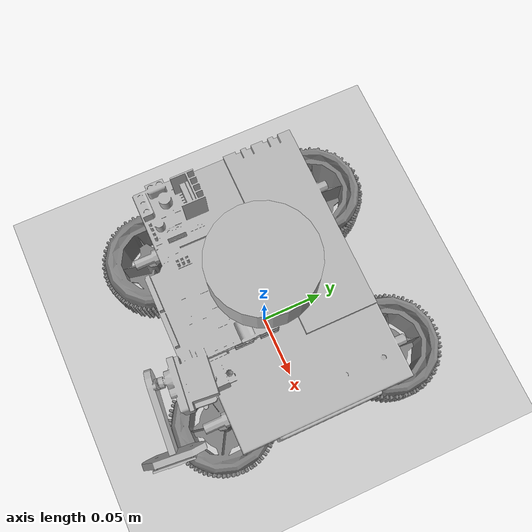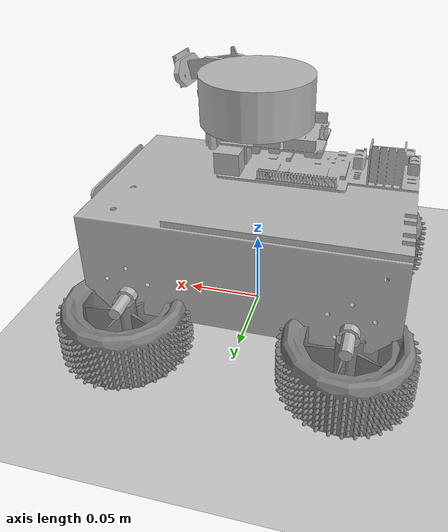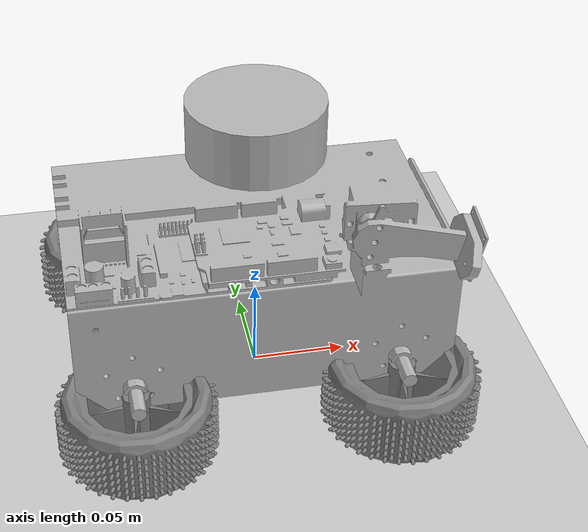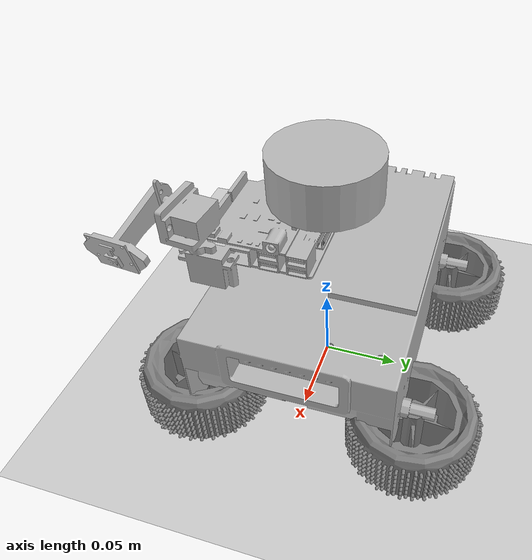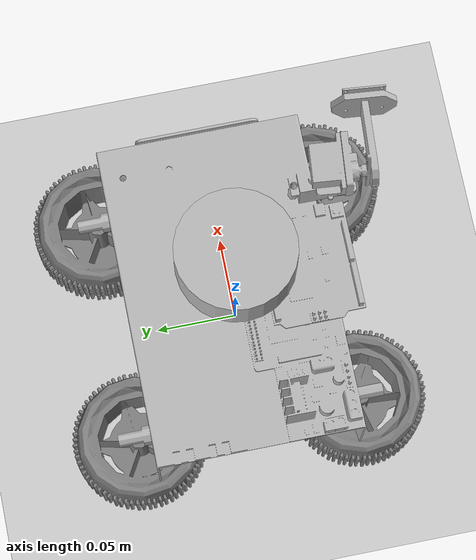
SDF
<?xml version="1.0" ?>

<sdf version="1.6">
  <world name="default">
    <gravity>0 0 -9.8</gravity>
    <magnetic_field>6e-06 2.3e-05 -4.2e-05</magnetic_field>
    <atmosphere type='adiabatic'/>
    <physics type='ode'>
      <max_step_size>0.01</max_step_size>
      <real_time_factor>1</real_time_factor>
      <real_time_update_rate>100</real_time_update_rate>
    </physics>
    <include>
      <uri>model://sun</uri>
    </include>
    <include>
      <uri>model://ground_plane</uri>
    </include>

    <include>
      <pose>0 0 0.0 0 0 0</pose>
      <uri>model://axioma_v2</uri>
    </include>

  </world>
</sdf>

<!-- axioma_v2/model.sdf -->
<sdf version='1.7'>
  <model name='axioma_v2'>

    <link name='base_link'>

      <inertial>
        <pose>0 0 0 0 -0 0</pose>
        <mass>1</mass>
        <inertia>
          <ixx>0.0227</ixx>
          <ixy>0</ixy>
          <ixz>0</ixz>
          <iyy>0.0852</iyy>
          <iyz>0</iyz>
          <izz>0.1041</izz>
        </inertia>
      </inertial>
      <collision name='base_link_collision'>
        <pose>0 0 0 0 -0 0</pose>
        <geometry>
          <mesh>
            <scale>1 1 1</scale>
            <uri>model://axioma_v2/meshes/collision/chasis.dae</uri>
          </mesh>
        </geometry>
      </collision>
      <visual name='base_link_visual'>
        <pose>0 0 0 0 -0 0</pose>
        <geometry>
          <mesh>
            <scale>1 1 1</scale>
            <uri>model://axioma_v2/meshes/visual/chasis.stl</uri>
          </mesh>
        </geometry>
      </visual>
    </link>
    <joint name='base_to_wheel1' type='revolute'>
      <pose relative_to='base_link'>0.06442 0.07385 0.04068 0 -0 0</pose>
      <parent>base_link</parent>
      <child>wheel_1</child>
      <axis>
        <xyz>0 1 0</xyz>
        <limit>
          <lower>-1e+16</lower>
          <upper>1e+16</upper>
        </limit>
      </axis>
    </joint>
    <link name='wheel_1'>
      <pose relative_to='base_to_wheel1'>0 0 0 0 -0 0</pose>
      <inertial>
        <pose>0 0 0 0 -0 0</pose>
        <mass>0.1</mass>
        <inertia>
          <ixx>0.0029</ixx>
          <ixy>0</ixy>
          <ixz>0</ixz>
          <iyy>0.0029</iyy>
          <iyz>0</iyz>
          <izz>0.0056</izz>
        </inertia>
      </inertial>
      <collision name='wheel_1_collision'>
        <pose>0 0.02 0 -1.5707 -0 0</pose>
        <geometry>

          <cylinder>
            <radius>0.0381</radius>
            <length>0.03</length>
          </cylinder>

        </geometry>
                <surface>
          <friction>
            <ode>
              <mu>1</mu>
              <mu2>1</mu2>
              <slip1>0</slip1>
              <slip2>0</slip2>
            </ode>
          </friction>
          <contact>
            <ode>
              <soft_cfm>0</soft_cfm>
              <soft_erp>0.2</soft_erp>
              <kp>1e+13</kp>
              <kd>1</kd>
              <max_vel>0.01</max_vel>
              <min_depth>0.01</min_depth>
            </ode>
          </contact>
        </surface>
      </collision>
      <visual name='wheel_1_visual'>
        <pose>0 0 0 0 -0 0</pose>
        <geometry>
          <mesh>
            <scale>1 1 1</scale>
            <uri>model://axioma_v2/meshes/visual/llanta.stl</uri>
          </mesh>
        </geometry>
          <material>
          <diffuse>0.5 0.5 0.5 1</diffuse>
          <ambient>0 0 0 1</ambient>
          <specular>1 1 1 1</specular>
          <emissive>0 0 0 1</emissive>
        </material>
      </visual>
    </link>
    <joint name='base_to_wheel2' type='revolute'>
      <pose relative_to='base_link'>-0.071224 0.07385 0.04068 0 -0 0</pose>
      <parent>base_link</parent>
      <child>wheel_2</child>
      <axis>
        <xyz>0 1 0</xyz>
        <limit>
          <lower>-1e+16</lower>
          <upper>1e+16</upper>
        </limit>
      </axis>
    </joint>
    <link name='wheel_2'>
      <pose relative_to='base_to_wheel2'>0 0 0 0 -0 0</pose>
      <inertial>
        <pose>0 0 0 0 -0 0</pose>
        <mass>0.1</mass>
        <inertia>
          <ixx>0.0029</ixx>
          <ixy>0</ixy>
          <ixz>0</ixz>
          <iyy>0.0029</iyy>
          <iyz>0</iyz>
          <izz>0.0056</izz>
        </inertia>
      </inertial>
      <collision name='wheel_2_collision'>
        <pose>0 0.02 0 -1.5707 -0 0</pose>
        <geometry>

          <cylinder>
            <radius>0.0381</radius>
            <length>0.03</length>
          </cylinder>

        </geometry>
                <surface>
          <friction>
            <ode>
              <mu>1</mu>
              <mu2>1</mu2>
              <slip1>0</slip1>
              <slip2>0</slip2>
            </ode>
          </friction>
          <contact>
            <ode>
              <soft_cfm>0</soft_cfm>
              <soft_erp>0.2</soft_erp>
              <kp>1e+13</kp>
              <kd>1</kd>
              <max_vel>0.01</max_vel>
              <min_depth>0.01</min_depth>
            </ode>
          </contact>
        </surface>
      </collision>
      <visual name='wheel_2_visual'>
        <pose>0 0 0 0 -0 0</pose>
        <geometry>
          <mesh>
            <scale>1 1 1</scale>
            <uri>model://axioma_v2/meshes/visual/llanta.stl</uri>
          </mesh>
        </geometry>
          <material>
          <diffuse>0.5 0.5 0.5 1</diffuse>
          <ambient>0 0 0 1</ambient>
          <specular>1 1 1 1</specular>
          <emissive>0 0 0 1</emissive>
        </material>
      </visual>
    </link>
    <joint name='base_to_wheel3' type='revolute'>
      <pose relative_to='base_link'>-0.071224 -0.0625 0.04068 0 0 -3.14159</pose>
      <parent>base_link</parent>
      <child>wheel_3</child>
      <axis>
        <xyz>0 -1 0</xyz>
        <limit>
          <lower>-1e+16</lower>
          <upper>1e+16</upper>
        </limit>
      </axis>
    </joint>
    <link name='wheel_3'>
      <pose relative_to='base_to_wheel3'>0 0 0 0 -0 0</pose>
      <inertial>
        <pose>0 0 0 0 -0 0</pose>
        <mass>0.1</mass>
        <inertia>
          <ixx>0.0029</ixx>
          <ixy>0</ixy>
          <ixz>0</ixz>
          <iyy>0.0029</iyy>
          <iyz>0</iyz>
          <izz>0.0056</izz>
        </inertia>
      </inertial>
      <collision name='wheel_3_collision'>
        <pose>0 0.02 0 -1.5707 -0 0</pose>
        <geometry>

          <cylinder>
            <radius>0.0381</radius>
            <length>0.03</length>
          </cylinder>

        </geometry>
                <surface>
          <friction>
            <ode>
              <mu>1</mu>
              <mu2>1</mu2>
              <slip1>0</slip1>
              <slip2>0</slip2>
            </ode>
          </friction>
          <contact>
            <ode>
              <soft_cfm>0</soft_cfm>
              <soft_erp>0.2</soft_erp>
              <kp>1e+13</kp>
              <kd>1</kd>
              <max_vel>0.01</max_vel>
              <min_depth>0.01</min_depth>
            </ode>
          </contact>
        </surface>
      </collision>
      <visual name='wheel_3_visual'>
        <pose>0 0 0 0 -0 0</pose>
        <geometry>
          <mesh>
            <scale>1 1 1</scale>
            <uri>model://axioma_v2/meshes/visual/llanta.stl</uri>
          </mesh>
        </geometry>
                <material>
          <diffuse>0.5 0.5 0.5 1</diffuse>
          <ambient>0 0 0 1</ambient>
          <specular>1 1 1 1</specular>
          <emissive>0 0 0 1</emissive>
        </material>
      </visual>
    </link>
    <joint name='base_to_wheel4' type='revolute'>
      <pose relative_to='base_link'>0.064423 -0.0625 0.04068 0 0 -3.14159</pose>
      <parent>base_link</parent>
      <child>wheel_4</child>
      <axis>
        <xyz>0 -1 0</xyz>
        <limit>
          <lower>-1e+16</lower>
          <upper>1e+16</upper>
        </limit>
      </axis>
    </joint>
    <link name='wheel_4'>
      <pose relative_to='base_to_wheel4'>0 0 0 0 -0 0</pose>
      <inertial>
        <pose>0 0 0 0 -0 0</pose>
        <mass>0.1</mass>
        <inertia>
          <ixx>0.0029</ixx>
          <ixy>0</ixy>
          <ixz>0</ixz>
          <iyy>0.0029</iyy>
          <iyz>0</iyz>
          <izz>0.0056</izz>
        </inertia>
      </inertial>
      <collision name='wheel_4_collision'>
        <pose>0 0.02 0 -1.5707 -0 0</pose>
        <geometry>

          <cylinder>
            <radius>0.0381</radius>
            <length>0.03</length>
          </cylinder>

        </geometry>
                <surface>
          <friction>
            <ode>
              <mu>1</mu>
              <mu2>1</mu2>
              <slip1>0</slip1>
              <slip2>0</slip2>
            </ode>
          </friction>
          <contact>
            <ode>
              <soft_cfm>0</soft_cfm>
              <soft_erp>0.2</soft_erp>
              <kp>1e+13</kp>
              <kd>1</kd>
              <max_vel>0.01</max_vel>
              <min_depth>0.01</min_depth>
            </ode>
          </contact>
        </surface>
      </collision>
      <visual name='wheel_4_visual'>
        <pose>0 0 0 0 -0 0</pose>
        <geometry>
          <mesh>
            <scale>1 1 1</scale>
            <uri>model://axioma_v2/meshes/visual/llanta.stl</uri>
          </mesh>
        </geometry>
                        <material>
          <diffuse>0.5 0.5 0.5 1</diffuse>
          <ambient>0 0 0 1</ambient>
          <specular>1 1 1 1</specular>
          <emissive>0 0 0 1</emissive>
        </material>
      </visual>
    </link>

   <link name="base_scan">
    <pose> 0 0 0.15 0 0 1.5708</pose>
        <inertial>
          <inertia>
            <ixx>0.001</ixx>
            <ixy>0.000</ixy>
            <ixz>0.000</ixz>
            <iyy>0.001</iyy>
            <iyz>0.000</iyz>
            <izz>0.001</izz>
          </inertia>
          <mass>0.125</mass>
        </inertial>
        <collision name="lidar_sensor_collision">
          <geometry>
            <cylinder>
              <radius>0.035</radius>
              <length>0.030</length>
            </cylinder>
          </geometry>
        </collision>
        <visual name="lidar_sensor_visual">
          <geometry>
            <cylinder>
              <radius>0.035</radius>
              <length>0.030</length>
            </cylinder>
          </geometry>
        </visual>
        <sensor name="hls_lfcd_lds" type="ray">
          <pose>0 0 0 0 0 0</pose>
          <always_on>true</always_on>
          <visualize>true</visualize>
          <update_rate>20</update_rate>
          <ray>
            <scan>
              <horizontal>
                <samples>360</samples>
                <resolution>2.000000</resolution>
                <min_angle>0.000000</min_angle>
                <max_angle>6.280000</max_angle>
              </horizontal>
            </scan>
            <range>
              <min>0.120000</min>
              <max>3.5</max>
              <resolution>0.02000</resolution>
            </range>
          </ray>
          <plugin name="laserscan" filename="libgazebo_ros_ray_sensor.so">
            <ros>
                <remapping>~/out:=scan</remapping>
            </ros>

            <output_type>sensor_msgs/LaserScan</output_type>
            <frame_name>base_link</frame_name> <!--TODO: cambiar al frame que coinicda en el urdf-->
          </plugin>
        </sensor>
      </link>

    <link name="imu_link">
        <pose > 0.1 0.1 0.12 0 0 0</pose>
        <sensor name="tb3_imu" type="imu">
          <always_on>true</always_on>
          <update_rate>50</update_rate>
          <imu>
            <angular_velocity>
              <x>
                <noise type="gaussian">
                  <mean>0.0</mean>
                  <stddev>2e-4</stddev>
                </noise>
              </x>
              <y>
                <noise type="gaussian">
                  <mean>0.0</mean>
                  <stddev>2e-4</stddev>
                </noise>
              </y>
              <z>
                <noise type="gaussian">
                  <mean>0.0</mean>
                  <stddev>2e-4</stddev>
                </noise>
              </z>
            </angular_velocity>
            <linear_acceleration>
              <x>
                <noise type="gaussian">
                  <mean>0.0</mean>
                  <stddev>1.7e-2</stddev>
                </noise>
              </x>
              <y>
                <noise type="gaussian">
                  <mean>0.0</mean>
                  <stddev>1.7e-2</stddev>
                </noise>
              </y>
              <z>
                <noise type="gaussian">
                  <mean>0.0</mean>
                  <stddev>1.7e-2</stddev>
                </noise>
              </z>
            </linear_acceleration>
          </imu>
          <plugin name="turtlebot3_imu" filename="libgazebo_ros_imu_sensor.so">
            <ros>
              <namespace>/axioma</namespace>
              <remapping>~/out:=imu</remapping>
            </ros>
          </plugin>
        </sensor>
      </link>

    <joint name="imu_joint" type="fixed">
        <parent>base_link</parent>
        <child>imu_link</child>
        <axis>
          <xyz>0 0 0</xyz>
        </axis>
    </joint>

    <joint name="lidar_joint" type="fixed">
        <parent>base_link</parent>
        <child>base_scan</child>
        <axis>
          <xyz>0 0 0</xyz>
        </axis>
    </joint>
    <plugin name='skid_steer_drive' filename='libgazebo_ros_diff_drive.so'>

        <!-- Update rate -->
        <update_rate>20</update_rate>
        <!-- Number of wheel pairs -->
        <num_wheel_pairs>2</num_wheel_pairs>
        <!-- wheels0 -->
        <left_joint>base_to_wheel1</left_joint>
        <right_joint>base_to_wheel4</right_joint>
        <!-- wheels1-->
        <left_joint>base_to_wheel2</left_joint>
        <right_joint>base_to_wheel3</right_joint>
        <!-- kinematics -->
        <wheel_separation>0.1725</wheel_separation>
        <wheel_separation>0.1725</wheel_separation>
        <wheel_diameter>0.0762</wheel_diameter>
        <wheel_diameter>0.0762</wheel_diameter>
        <!-- limits -->
        <max_wheel_torque>20</max_wheel_torque>
        <max_wheel_acceleration>1</max_wheel_acceleration>
        <!-- output -->
        <publish_odom>true</publish_odom>
        <publish_odom_tf>true</publish_odom_tf>
        <odometry_frame>odom</odometry_frame>
        <robot_base_frame>base_link</robot_base_frame>
      </plugin>

      <plugin name="scooby_joint_state" filename="libgazebo_ros_joint_state_publisher.so">
      <ros>
        <remapping>~/out:=joint_states</remapping>
      </ros>
      <update_rate>20</update_rate>
      <joint_name>base_to_wheel1</joint_name> <!--motor direita-->
      <joint_name>base_to_wheel2</joint_name> <!--motor esquerda-->
      <joint_name>base_to_wheel3</joint_name>
      <joint_name>base_to_wheel4</joint_name>
    </plugin>
  </model>
</sdf>
